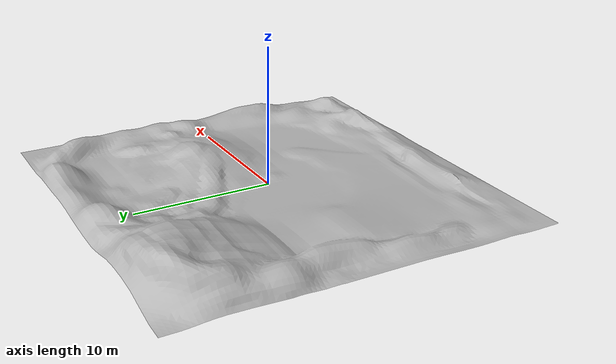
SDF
<?xml version="1.0" ?>
<sdf version="1.9">
  <model name="forest_env">
    <static>true</static>
    <link name="ground_link">

      <!-- VISUAL: hilly mesh -->
      <visual name="ground_visual">
        <geometry>
          <mesh>
            <uri>model://forest_env/meshes/Environment1.dae</uri>
            <scale>17.5 17.5 17.5</scale>
          </mesh>
        </geometry>
      </visual>

      <!-- COLLISION: match the visual (same uri + scale) -->
      <collision name="ground_collision">
        <geometry>
          <mesh>
            <!-- use a simplified collision mesh if you have one: Environment1_col.stl -->
            <uri>model://forest_env/meshes/Environment1.dae</uri>
            <scale>17.5 17.5 17.5</scale>
          </mesh>
        </geometry>
        <surface>
          <contact>
            <ode>
              <kp>2e6</kp>
              <kd>1.0</kd>
              <max_vel>0.2</max_vel>
              <min_depth>0.001</min_depth>
            </ode>
          </contact>
          <friction><ode><mu>1.0</mu><mu2>1.0</mu2></ode></friction>
        </surface>
      </collision>

    </link>
  </model>
</sdf>
